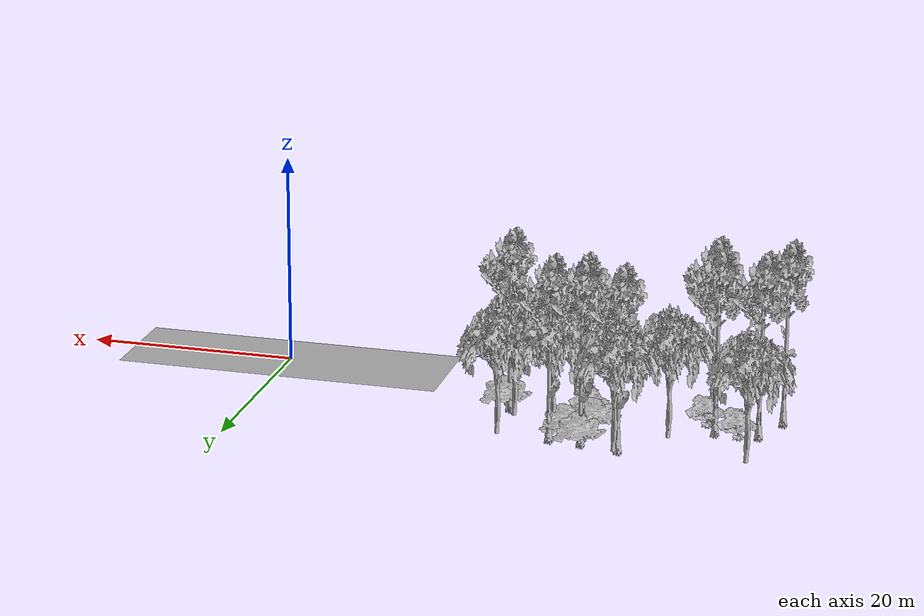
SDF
<sdf version="1.7">
 <world name="default">
  <model name="ground_plane">
   <static>1</static>
   <link name="link">
    <collision name="collision">
     <pose>-50 0 0 0 -0 0</pose>
     <geometry><plane><normal>0 0 1</normal><size>100 100</size></plane></geometry>
     <surface><contact><ode><min_depth>0.01</min_depth><max_vel>0</max_vel></ode></contact></surface>
    </collision>
    <visual name="grass">
     <cast_shadows>0</cast_shadows>
     <geometry>
      <mesh>
       <scale>0.5814285714285714 0.18142857142857144 0.1</scale>
       <uri>file://grass_plane/meshes/grass_plane.dae</uri>
      </mesh>
     </geometry>
    </visual>
   </link>
  </model>
  <model name="Tree 1">
   <static>1</static>
   <pose>-31.017285858310263 6.9304984635334606 0 1.57079 -0 0</pose>
   <link name="link">
    <collision name="collision">
     <geometry><mesh><scale>4 2.5 4</scale><uri>model://tree_1/meshes/tree_1.obj</uri></mesh></geometry>
    </collision>
    <visual name="visual">
     <geometry><mesh><scale>4 2.5 4</scale><uri>model://tree_1/meshes/tree_1.obj</uri></mesh></geometry>
    </visual>
   </link>
  </model>
  <model name="Tree 15">
   <static>1</static>
   <pose>-48.23645949559417 3.5121281507048963 0 1.57079 -0 0</pose>
   <link name="link">
    <collision name="collision">
     <geometry><mesh><scale>3.5 5 3.5</scale><uri>model://tree_9/meshes/tree_9.obj</uri></mesh></geometry>
    </collision>
    <visual name="visual">
     <geometry><mesh><scale>3.5 5 3.5</scale><uri>model://tree_9/meshes/tree_9.obj</uri></mesh></geometry>
    </visual>
   </link>
  </model>
  <model name="Tree 22">
   <static>1</static>
   <pose>-42.68242296811453 7.53280757684221 0 1.57079 -0 0</pose>
   <link name="link">
    <collision name="collision">
     <geometry><mesh><scale>3.5 5 3.5</scale><uri>model://tree_9/meshes/tree_9.obj</uri></mesh></geometry>
    </collision>
    <visual name="visual">
     <geometry><mesh><scale>3.5 5 3.5</scale><uri>model://tree_9/meshes/tree_9.obj</uri></mesh></geometry>
    </visual>
   </link>
  </model>
  <model name="Tree 32">
   <static>1</static>
   <pose>-35.034220263809544 14.986196836698753 0 1.57079 -0 0</pose>
   <link name="link">
    <collision name="collision">
     <geometry><mesh><scale>3.5 5 3.5</scale><uri>model://tree_2/meshes/tree_2.obj</uri></mesh></geometry>
    </collision>
    <visual name="visual">
     <geometry><mesh><scale>3.5 5 3.5</scale><uri>model://tree_2/meshes/tree_2.obj</uri></mesh></geometry>
    </visual>
   </link>
  </model>
  <model name="Tree 37">
   <static>1</static>
   <pose>-41.77976140808428 6.666664197930416 0 1.57079 -0 0</pose>
   <link name="link">
    <collision name="collision">
     <geometry><mesh><scale>4 2.5 4</scale><uri>model://tree_1/meshes/tree_1.obj</uri></mesh></geometry>
    </collision>
    <visual name="visual">
     <geometry><mesh><scale>4 2.5 4</scale><uri>model://tree_1/meshes/tree_1.obj</uri></mesh></geometry>
    </visual>
   </link>
  </model>
  <model name="Tree 47">
   <static>1</static>
   <pose>-31.411772230798963 11.926480216817257 0 1.57079 -0 0</pose>
   <link name="link">
    <collision name="collision">
     <geometry><mesh><scale>3.5 5 3.5</scale><uri>model://tree_9/meshes/tree_9.obj</uri></mesh></geometry>
    </collision>
    <visual name="visual">
     <geometry><mesh><scale>3.5 5 3.5</scale><uri>model://tree_9/meshes/tree_9.obj</uri></mesh></geometry>
    </visual>
   </link>
  </model>
  <model name="Tree 53">
   <static>1</static>
   <pose>-24.03082268183487 13.491867719478737 0 1.57079 -0 0</pose>
   <link name="link">
    <collision name="collision">
     <geometry><mesh><scale>3.5 5 3.5</scale><uri>model://tree_2/meshes/tree_2.obj</uri></mesh></geometry>
    </collision>
    <visual name="visual">
     <geometry><mesh><scale>3.5 5 3.5</scale><uri>model://tree_2/meshes/tree_2.obj</uri></mesh></geometry>
    </visual>
   </link>
  </model>
  <model name="Tree 54">
   <static>1</static>
   <pose>-46.789588330577864 14.409671609686157 0 1.57079 -0 0</pose>
   <link name="link">
    <collision name="collision">
     <geometry><mesh><scale>3.5 5 3.5</scale><uri>model://tree_2/meshes/tree_2.obj</uri></mesh></geometry>
    </collision>
    <visual name="visual">
     <geometry><mesh><scale>3.5 5 3.5</scale><uri>model://tree_2/meshes/tree_2.obj</uri></mesh></geometry>
    </visual>
   </link>
  </model>
  <model name="Tree 62">
   <static>1</static>
   <pose>-31.5384249679083 13.70037050727976 0 1.57079 -0 0</pose>
   <link name="link">
    <collision name="collision">
     <geometry><mesh><scale>3 2 3</scale><uri>model://tree_3/meshes/tree_3.obj</uri></mesh></geometry>
    </collision>
    <visual name="visual">
     <geometry><mesh><scale>3 2 3</scale><uri>model://tree_3/meshes/tree_3.obj</uri></mesh></geometry>
    </visual>
   </link>
  </model>
  <model name="Tree 67">
   <static>1</static>
   <pose>-35.1279631487692 14.064554300863382 0 1.57079 -0 0</pose>
   <link name="link">
    <collision name="collision">
     <geometry><mesh><scale>3.5 5 3.5</scale><uri>model://tree_9/meshes/tree_9.obj</uri></mesh></geometry>
    </collision>
    <visual name="visual">
     <geometry><mesh><scale>3.5 5 3.5</scale><uri>model://tree_9/meshes/tree_9.obj</uri></mesh></geometry>
    </visual>
   </link>
  </model>
  <model name="Tree 69">
   <static>1</static>
   <pose>-46.62187636038604 7.370027068411595 0 1.57079 -0 0</pose>
   <link name="link">
    <collision name="collision">
     <geometry><mesh><scale>3.5 5 3.5</scale><uri>model://tree_9/meshes/tree_9.obj</uri></mesh></geometry>
    </collision>
    <visual name="visual">
     <geometry><mesh><scale>3.5 5 3.5</scale><uri>model://tree_9/meshes/tree_9.obj</uri></mesh></geometry>
    </visual>
   </link>
  </model>
  <model name="Tree 71">
   <static>1</static>
   <pose>-32.10564157468142 9.708246957991623 0 1.57079 -0 0</pose>
   <link name="link">
    <collision name="collision">
     <geometry><mesh><scale>3 2 3</scale><uri>model://tree_3/meshes/tree_3.obj</uri></mesh></geometry>
    </collision>
    <visual name="visual">
     <geometry><mesh><scale>3 2 3</scale><uri>model://tree_3/meshes/tree_3.obj</uri></mesh></geometry>
    </visual>
   </link>
  </model>
  <model name="Tree 89">
   <static>1</static>
   <pose>-22.933935068211948 6.248751325975594 0 1.57079 -0 0</pose>
   <link name="link">
    <collision name="collision">
     <geometry><mesh><scale>3 2 3</scale><uri>model://tree_3/meshes/tree_3.obj</uri></mesh></geometry>
    </collision>
    <visual name="visual">
     <geometry><mesh><scale>3 2 3</scale><uri>model://tree_3/meshes/tree_3.obj</uri></mesh></geometry>
    </visual>
   </link>
  </model>
  <model name="Tree 103">
   <static>1</static>
   <pose>-28.601667793684246 13.04839550977334 0 1.57079 -0 0</pose>
   <link name="link">
    <collision name="collision">
     <geometry><mesh><scale>3.5 5 3.5</scale><uri>model://tree_9/meshes/tree_9.obj</uri></mesh></geometry>
    </collision>
    <visual name="visual">
     <geometry><mesh><scale>3.5 5 3.5</scale><uri>model://tree_9/meshes/tree_9.obj</uri></mesh></geometry>
    </visual>
   </link>
  </model>
  <model name="Tree 113">
   <static>1</static>
   <pose>-41.7516209506543 4.17158539502865 0 1.57079 -0 0</pose>
   <link name="link">
    <collision name="collision">
     <geometry><mesh><scale>3.5 5 3.5</scale><uri>model://tree_9/meshes/tree_9.obj</uri></mesh></geometry>
    </collision>
    <visual name="visual">
     <geometry><mesh><scale>3.5 5 3.5</scale><uri>model://tree_9/meshes/tree_9.obj</uri></mesh></geometry>
    </visual>
   </link>
  </model>
  <model name="Tree 117">
   <static>1</static>
   <pose>-31.579929109677053 13.353376242980566 0 1.57079 -0 0</pose>
   <link name="link">
    <collision name="collision">
     <geometry><mesh><scale>3.5 5 3.5</scale><uri>model://tree_9/meshes/tree_9.obj</uri></mesh></geometry>
    </collision>
    <visual name="visual">
     <geometry><mesh><scale>3.5 5 3.5</scale><uri>model://tree_9/meshes/tree_9.obj</uri></mesh></geometry>
    </visual>
   </link>
  </model>
  <model name="Tree 125">
   <static>1</static>
   <pose>-29.903497581223707 11.926582782417075 0 1.57079 -0 0</pose>
   <link name="link">
    <collision name="collision">
     <geometry><mesh><scale>3 2 3</scale><uri>model://tree_3/meshes/tree_3.obj</uri></mesh></geometry>
    </collision>
    <visual name="visual">
     <geometry><mesh><scale>3 2 3</scale><uri>model://tree_3/meshes/tree_3.obj</uri></mesh></geometry>
    </visual>
   </link>
  </model>
  <model name="Tree 130">
   <static>1</static>
   <pose>-45.050648889440026 9.011979447625954 0 1.57079 -0 0</pose>
   <link name="link">
    <collision name="collision">
     <geometry><mesh><scale>4 2.5 4</scale><uri>model://tree_1/meshes/tree_1.obj</uri></mesh></geometry>
    </collision>
    <visual name="visual">
     <geometry><mesh><scale>4 2.5 4</scale><uri>model://tree_1/meshes/tree_1.obj</uri></mesh></geometry>
    </visual>
   </link>
  </model>
  <model name="Tree 142">
   <static>1</static>
   <pose>-28.755460099813728 2.1098673969693778 0 1.57079 -0 0</pose>
   <link name="link">
    <collision name="collision">
     <geometry><mesh><scale>3.5 5 3.5</scale><uri>model://tree_2/meshes/tree_2.obj</uri></mesh></geometry>
    </collision>
    <visual name="visual">
     <geometry><mesh><scale>3.5 5 3.5</scale><uri>model://tree_2/meshes/tree_2.obj</uri></mesh></geometry>
    </visual>
   </link>
  </model>
  <model name="Tree 154">
   <static>1</static>
   <pose>-39.05270325482255 10.385004653234684 0 1.57079 -0 0</pose>
   <link name="link">
    <collision name="collision">
     <geometry><mesh><scale>3.5 5 3.5</scale><uri>model://tree_2/meshes/tree_2.obj</uri></mesh></geometry>
    </collision>
    <visual name="visual">
     <geometry><mesh><scale>3.5 5 3.5</scale><uri>model://tree_2/meshes/tree_2.obj</uri></mesh></geometry>
    </visual>
   </link>
  </model>
  <model name="Tree 155">
   <static>1</static>
   <pose>-23.360742005618214 6.5018773487148565 0 1.57079 -0 0</pose>
   <link name="link">
    <collision name="collision">
     <geometry><mesh><scale>3.5 5 3.5</scale><uri>model://tree_9/meshes/tree_9.obj</uri></mesh></geometry>
    </collision>
    <visual name="visual">
     <geometry><mesh><scale>3.5 5 3.5</scale><uri>model://tree_9/meshes/tree_9.obj</uri></mesh></geometry>
    </visual>
   </link>
  </model>
  <model name="Tree 176">
   <static>1</static>
   <pose>-24.44009361837484 8.696343125159686 0 1.57079 -0 0</pose>
   <link name="link">
    <collision name="collision">
     <geometry><mesh><scale>3.5 5 3.5</scale><uri>model://tree_2/meshes/tree_2.obj</uri></mesh></geometry>
    </collision>
    <visual name="visual">
     <geometry><mesh><scale>3.5 5 3.5</scale><uri>model://tree_2/meshes/tree_2.obj</uri></mesh></geometry>
    </visual>
   </link>
  </model>
  <model name="Tree 179">
   <static>1</static>
   <pose>-28.851548241808494 12.262132091615538 0 1.57079 -0 0</pose>
   <link name="link">
    <collision name="collision">
     <geometry><mesh><scale>3.5 5 3.5</scale><uri>model://tree_2/meshes/tree_2.obj</uri></mesh></geometry>
    </collision>
    <visual name="visual">
     <geometry><mesh><scale>3.5 5 3.5</scale><uri>model://tree_2/meshes/tree_2.obj</uri></mesh></geometry>
    </visual>
   </link>
  </model>
 </world>
</sdf>
